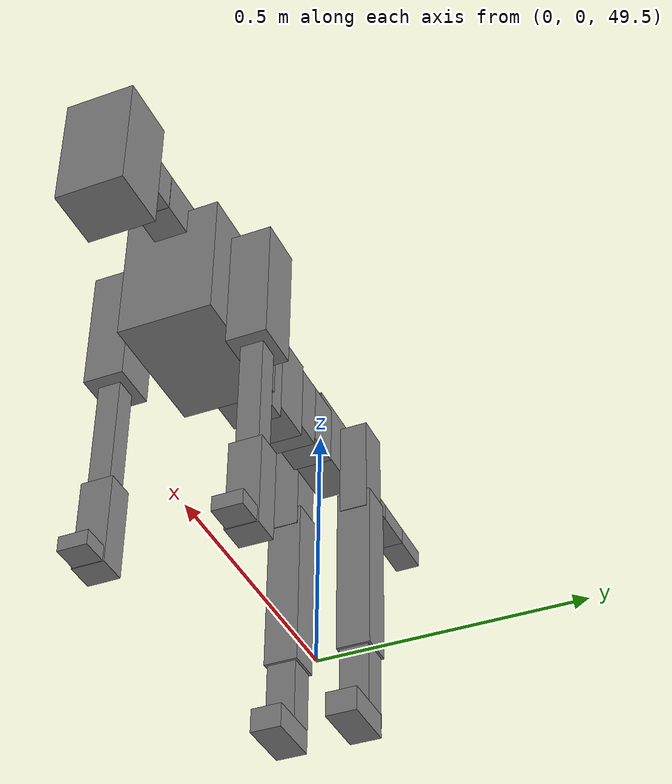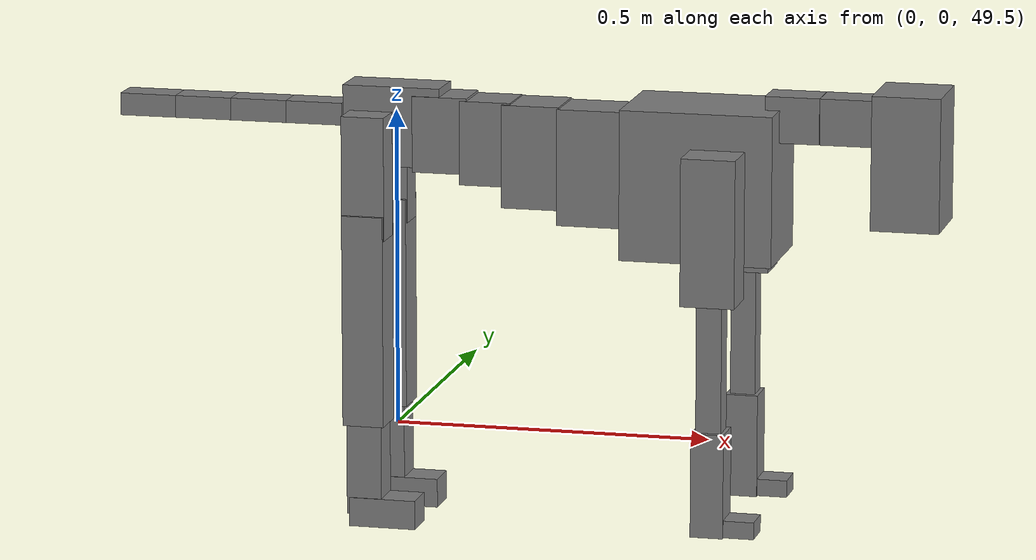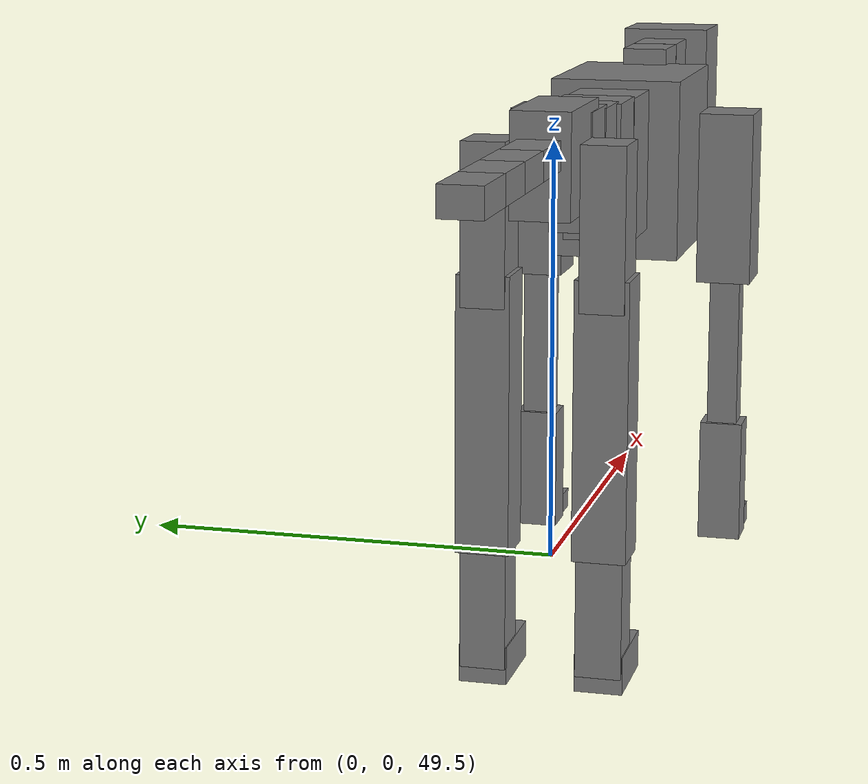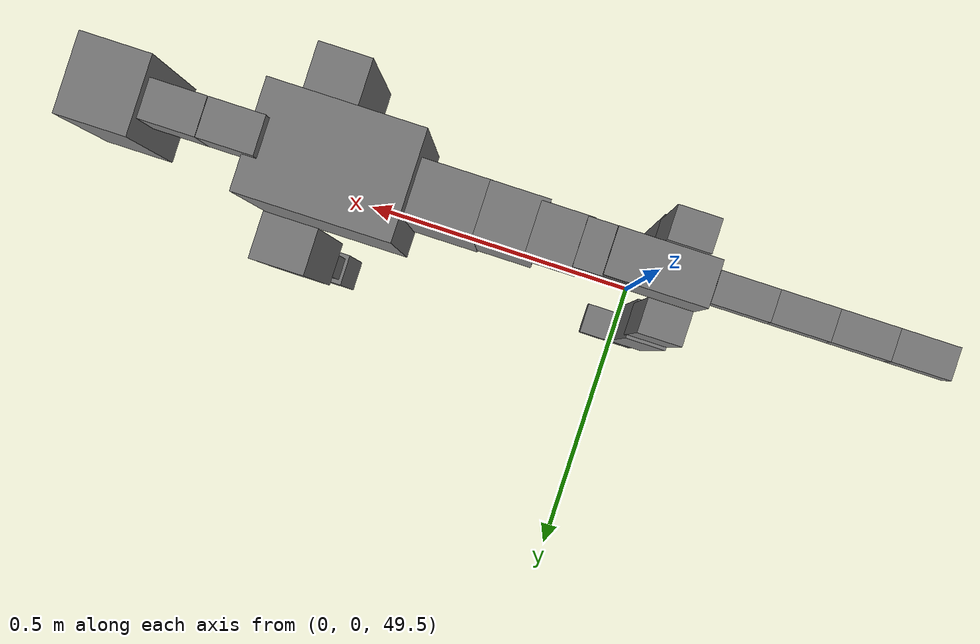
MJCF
<mujoco model="dog">

    <default>
        <joint armature="0.02" stiffness="1" damping="0.2" limited="true"/>
        <geom condim="3" friction="1 0.05 0.05" margin="0.01"/>
        <motor ctrllimited="true" ctrlrange="-1.0 1.0" forcelimited="true" gear="50"/>
    </default>

    <compiler inertiafromgeom="true" angle="radian"/>

    <option timestep="0.016" iterations="50" tolerance="1e-10" solver="Newton" jacobian="dense" cone="pyramidal"/>

    <size nconmax="20000" njmax="60000" nstack="5000000"/>
    <visual>
        <map force="0.1" zfar="30"/>
        <rgba haze="0.15 0.25 0.35 1"/>
        <quality shadowsize="2048"/>
        <global offwidth="800" offheight="800"/>
    </visual>

    <asset>
        <texture type="skybox" builtin="gradient" rgb1="0.3 0.5 0.7" rgb2="0 0 0" width="512" height="512"/>
        <texture name="texplane" type="2d" builtin="checker" rgb1=".2 .3 .4" rgb2=".1 0.15 0.2" width="512" height="512"
                 mark="cross" markrgb=".8 .8 .8"/>
        <texture name="texgeom" type="cube" builtin="flat" mark="cross" width="127" height="1278" rgb1="0.8 0.6 0.4"
                 rgb2="0.8 0.6 0.4" markrgb="1 1 1" random="0.01"/>

        <material name="matplane" reflectance="0.3" texture="texplane" texrepeat="1 1" texuniform="true"/>
        <material name="matgeom" texture="texgeom" texuniform="true" rgba="0.8 0.6 .4 1"/>
    </asset>

    <worldbody>
        <geom name="floor" pos="0 0 0" size="0 0 .25" type="plane" material="matplane" condim="3"/>

        <light directional="false" diffuse=".2 .2 .2" specular="0 0 0" pos="0 0 5" dir="0 0 -1" castshadow="false"/>
        <light mode="targetbodycom" target="torso" directional="false" diffuse=".8 .8 .8" specular="0.3 0.3 0.3"
               pos="0 0 4.0" dir="0 0 -1"/>

        <body name="root" pos="0 0 50">
            <freejoint name="root_1"/>
            <geom type="box" pos="0 0 -0.02" size="0.0774  0.0358  0.063" density="2030"/>

            <body name="spine1" pos="0.054 0 0">
                <joint name="spine1_y" axis="0 1 0" range="0 0.7" limited="true"/>
                <geom type="box" pos="0.02375 0 -0.03" size="0.04375  0.0375  0.05985" density="2030"/>

                <body name="spine2" pos="0.0612 0 0">
                    <joint name="spine2_y" axis="0 1 0" range="-0.15 0.15" limited="true"/>
                    <geom type="box" pos="0.03555  0  -0.04" size="0.04055  0.039  0.06615" density="2030"/>

                    <body name="spine3" pos="0.0730 0 0">
                        <joint name="spine3_y" axis="0 1 0" range="-0.15 0.15" limited="true"/>
                        <geom type="box" pos="0.03555  0  -0.057" size="0.04555  0.0445  0.081" density="2030"/>

                        <body name="spine4" pos="0.0780 0 0">
                            <joint name="spine4_y" axis="0 1 0" range="-0.15 0.15" limited="true"/>
                            <geom type="box" pos="0.05265  0  -0.07" size="0.05265  0.045  0.09135" density="2030"/>

                            <body name="torso" pos="0.1082 0 0">
                                <joint name="torso_y" axis="0 1 0" range="-0.15 0.15" limited="true"/>
                                <geom type="box" pos="0.11925  0  -0.085" size="0.11925  0.085  0.11745"
                                      density="2030"/>

                                <body name="neck1" pos="0.2160  0   0.0180">
                                    <joint name="neck1_y" axis="0 1 0" range="-1.2  -1" limited="true"/>
                                    <geom type="box" pos="0.0423  0  0" size="0.0423  0.03  0.036" density="2325"/>

                                    <body name="neck2" pos="0.0853  0  0">
                                        <joint name="neck2_y" axis="0 1 0" range="0.1  0" limited="true"/>
                                        <geom type="box" pos="0.0423  0  0" size="0.0423  0.03  0.036" density="2325"/>

                                        <body name="head" pos="0.0853  0  0">
                                            <joint name="head_y" axis="0 1 0" range="-0.3  -0.2" limited="true"/>
                                            <geom type="box" pos="0.0531  0  -0.055" size="0.0531  0.06  0.1044"
                                                  density="4030"/>

                                        </body>
                                    </body>
                                </body>

                                <body name="front_shoulder" pos="0.156  0   -0.0480">
                                    <joint name="front_shoulder_y" axis="0 1 0" range="-1 1.5" limited="true"/>
                                    <geom type="box" pos="0 0.13 -0.0882" size="0.0422  0.0361  0.1148" density="1158"/>
                                    <geom type="box" pos="0 -0.13 -0.0882" size="0.0422  0.0361  0.1148"
                                          density="1158"/>

                                    <body name="front_elbow" pos="0  0  -0.1763">
                                        <joint name="front_elbow_y" axis="0 1 0" range="-2 0" limited="true"/>
                                        <geom type="box" pos="0 0.13 -0.1199" size="0.0197  0.0201  0.1199"
                                              density="1081"/>
                                        <geom type="box" pos="0 -0.13 -0.1199" size="0.0197  0.0201  0.1199"
                                              density="1081"/>

                                        <body name="front_wrist" pos="0  0  -0.2398">
                                            <joint name="front_wrist_y" axis="0 1 0" range="-0.2 0" limited="true"/>
                                            <geom type="box" pos="0 0.13 -0.0685" size="0.0256  0.0285  0.0817"
                                                  density="1664"/>
                                            <geom type="box" pos="0 -0.13 -0.0685" size="0.0256  0.0285  0.0817"
                                                  density="1664"/>

                                            <body name="front_finger_end" pos="0  0  -0.1370">
                                                <joint name="front_finger_y" axis="0 1 0" range="-0.4 1"
                                                       limited="true"/>
                                                <geom type="box" pos="0.0260  0.13  0.0016"
                                                      size="0.0476  0.0260  0.0134" density="1515"/>
                                                <geom type="box" pos="0.0260  -0.13  0.0016"
                                                      size="0.0476  0.0260  0.0134" density="1515"/>

                                            </body>

                                        </body>
                                    </body>
                                </body>

                            </body>
                        </body>
                    </body>
                </body>
            </body>

            <body name="back_hip" pos="-0.03 0 -0.018">
                <joint name="back_hip_y" axis="0 1 0" range="-1.5 0.3" limited="true"/>
                <geom type="box" pos="0 0.07 -0.0744" size="0.0339  0.0266  0.0972" density="1154"/>
                <geom type="box" pos="0 -0.07 -0.0744" size="0.0339  0.0266  0.0972" density="1154"/>

                <body name="back_knee" pos="0  0  -0.1487">
                    <joint name="back_knee_y" axis="0 1 0" range="0 2.8" limited="true"/>
                    <geom type="box" pos="0 0.07 -0.1516" size="0.0327  0.0322  0.1672" density="1227"/>
                    <geom type="box" pos="0 -0.07 -0.1516" size="0.0327  0.0322  0.1672" density="1227"/>

                    <body name="back_ankle" pos="0  0  -0.3033">
                        <joint name="back_ankle_y" axis="0 1 0" range="-2.2 0" limited="true"/>
                        <geom type="box" pos="0 0.07 -0.0735" size="0.0277  0.0277  0.0847" density="1284"/>
                        <geom type="box" pos="0 -0.07 -0.0735" size="0.0277  0.0277  0.0847" density="1284"/>

                        <body name="back_toe_end" pos="0  0  -0.1469">
                            <joint name="back_toe_y" axis="0 1 0" range="-0.4 1" limited="true"/>
                            <geom type="box" pos="0.0289  0.07  -0.0079" size="0.0530  0.0289  0.0229" density="1515"/>
                            <geom type="box" pos="0.0289  -0.07  -0.0079" size="0.0530  0.0289  0.0229" density="1515"/>

                        </body>
                    </body>
                </body>
            </body>

            <body name="tail1" pos="-0.074 0 -0.006">
                <joint name="tail1_y" axis="0 1 0" range="-0.2 0.2" limited="true"/>
                <geom type="box" pos="-0.0536  0  0" size="0.045  0.025  0.0175" density="1587"/>

                <body name="tail2" pos="-0.09 0 0">
                    <joint name="tail2_y" axis="0 1 0" range="-0.2 0.2" limited="true"/>
                    <geom type="box" pos="-0.0536  0  0" size="0.045  0.025  0.0175" density="1587"/>

                    <body name="tail3" pos="-0.09 0 0">
                        <joint name="tail3_y" axis="0 1 0" range="-0.2 0.2" limited="true"/>
                        <geom type="box" pos="-0.0536  0  0" size="0.045  0.025  0.0175" density="1587"/>

                        <body name="tail4" pos="-0.09 0 0">
                            <joint name="tail4_y" axis="0 1 0" range="-0.2 0.2" limited="true"/>
                            <geom type="box" pos="-0.0536  0  0" size="0.045  0.025  0.0175" density="1587"/>

                        </body>
                    </body>
                </body>
            </body>
        </body>
    </worldbody>

    <actuator>
        <motor joint="spine1_y" forcerange="-150 150     "/>
        <motor joint="spine2_y" forcerange="-150 150     "/>
        <motor joint="spine3_y" forcerange="-150 150     "/>
        <motor joint="spine4_y" forcerange="-150 150     "/>
        <motor joint="torso_y" forcerange="-150 150     "/>
        <motor joint="neck1_y" forcerange="-100 100       "/>
        <motor joint="neck2_y" forcerange="-100 100       "/>
        <motor joint="head_y" forcerange="-150 150       "/>
        <motor joint="front_shoulder_y" forcerange="-153.74 186.71"/>
        <motor joint="front_elbow_y" forcerange="-143.03 103.33"/>
        <motor joint="front_wrist_y" forcerange="-111.99 116.01"/>
        <motor joint="front_finger_y" forcerange="-69.78 28.77"/>
        <motor joint="back_hip_y" forcerange="-273.57 280.65"/>
        <motor joint="back_knee_y" forcerange="-323.15 345.86"/>
        <motor joint="back_angle_y" forcerange="-156.14 186.39"/>
        <motor joint="back_toe_y" forcerange="-25.89 125.60"/>
        <motor joint="tail1_y" forcerange="-50 50     "/>
        <motor joint="tail2_y" forcerange="-50 50     "/>
        <motor joint="tail3_y" forcerange="-50 50     "/>
        <motor joint="tail4_y" forcerange="-50 50     "/>
    </actuator>
</mujoco>
